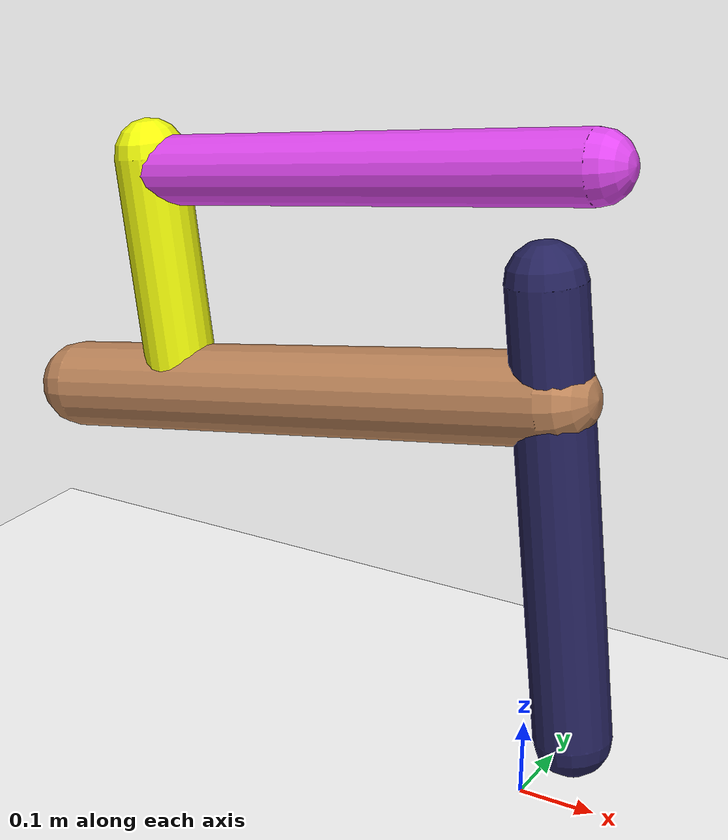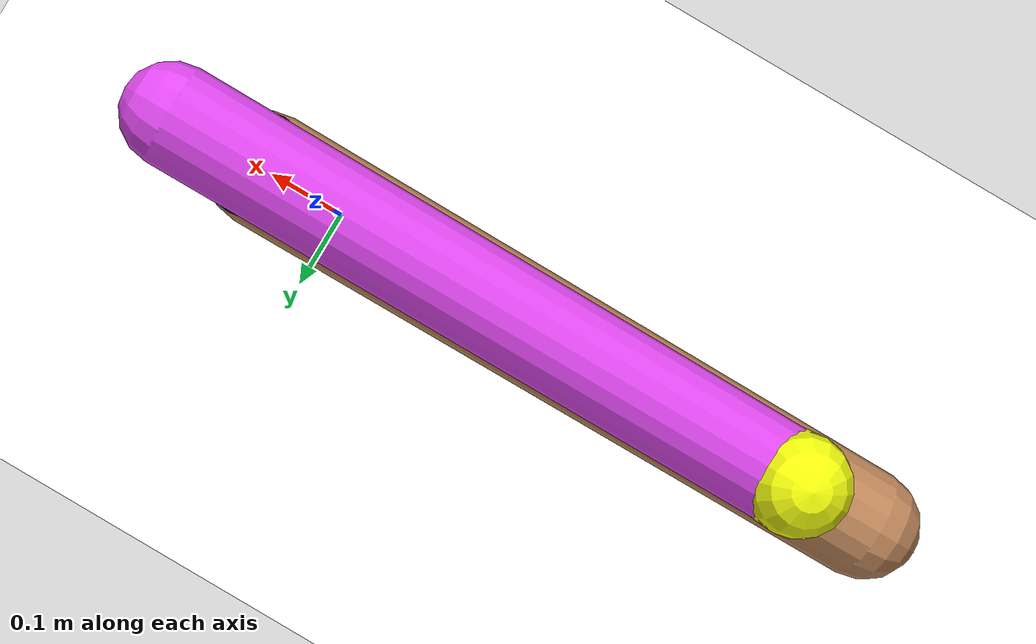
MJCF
<mujoco model="morphology">
  <option timestep="0.01"/>
  <default>
    <default class="/"/>
  </default>
  <asset>
    <texture name="texplane" type="2d" builtin="checker" rgb1="0.1 0.2 0.3" rgb2="0.2 0.3 0.4" width="300" height="300"/>
    <material name="MatPlane" class="/" texture="texplane" texrepeat="20 20" specular="1" shininess="1" reflectance="0.5"/>
  </asset>
  <worldbody>
    <light name="//unnamed_light_0" class="/" directional="true" pos="0 0 1.5" dir="0 0 -1.3" cutoff="1e+02" exponent="1" diffuse="1 1 1" specular="0.1 0.1 0.1"/>
    <geom name="ground" class="/" type="plane" size="15 15 0.5" material="MatPlane" rgba="1 1 1 1"/>
    <body name="body" pos="0 0 0.68">
      <geom name="geom0" class="/" type="capsule" contype="1" conaffinity="1" condim="3" size="0.05" rgba="0.15 0.14 0.37 1" friction="0.4 0.1 0.1" fromto="0 0 0 0.066 0 -0.58"/>
      <body name="body1" pos="0.016 0 -0.14">
        <geom name="geom1" class="/" type="capsule" contype="1" conaffinity="1" condim="3" size="0.058" rgba="0.74 0.52 0.35 1" friction="0.4 0.1 0.1" fromto="0 0 0 -0.7 0 -0.11"/>
        <body name="body2" pos="-0.53 0 -0.085">
          <geom name="geom2" class="/" type="capsule" contype="1" conaffinity="1" condim="3" size="0.047" rgba="0.95 0.99 0.04 1" friction="0.4 0.1 0.1" fromto="0 0 0 -0.044 0 0.31"/>
          <body name="body3" pos="-0.041 0 0.29">
            <geom name="geom3" class="/" type="capsule" contype="1" conaffinity="1" condim="3" size="0.045" rgba="0.87 0.28 0.93 1" friction="0.4 0.1 0.1" fromto="0 0 0 0.61 0 0.075"/>
            <joint name="joint3" class="/" type="hinge" axis="0 1 0" limited="true" stiffness="20" range="-54 54" armature="0.1" damping="2"/>
          </body>
          <joint name="joint2" class="/" type="hinge" axis="0 1 0" limited="true" stiffness="20" range="-57 57" armature="0.1" damping="2"/>
        </body>
        <joint name="joint1" class="/" type="hinge" axis="0 1 0" limited="true" stiffness="20" range="-53 53" armature="0.1" damping="2"/>
      </body>
      <joint name="rootx" class="/" type="slide" axis="1 0 0" limited="false" stiffness="0" armature="0" damping="0"/>
      <joint name="rootz" class="/" type="slide" axis="0 0 1" limited="false" stiffness="0" armature="0" damping="0"/>
      <joint name="rooty" class="/" type="hinge" axis="0 1 0" limited="false" stiffness="0" armature="0" damping="0"/>
    </body>
  </worldbody>
  <actuator>
    <motor name="motor3" class="/" ctrllimited="true" ctrlrange="-1 1" gear="1.9e+02" joint="joint3"/>
    <motor name="motor2" class="/" ctrllimited="true" ctrlrange="-1 1" gear="1.1e+02" joint="joint2"/>
    <motor name="motor1" class="/" ctrllimited="true" ctrlrange="-1 1" gear="1.6e+02" joint="joint1"/>
  </actuator>
  <sensor>
    <subtreelinvel name="velocity" body="body"/>
  </sensor>
</mujoco>
